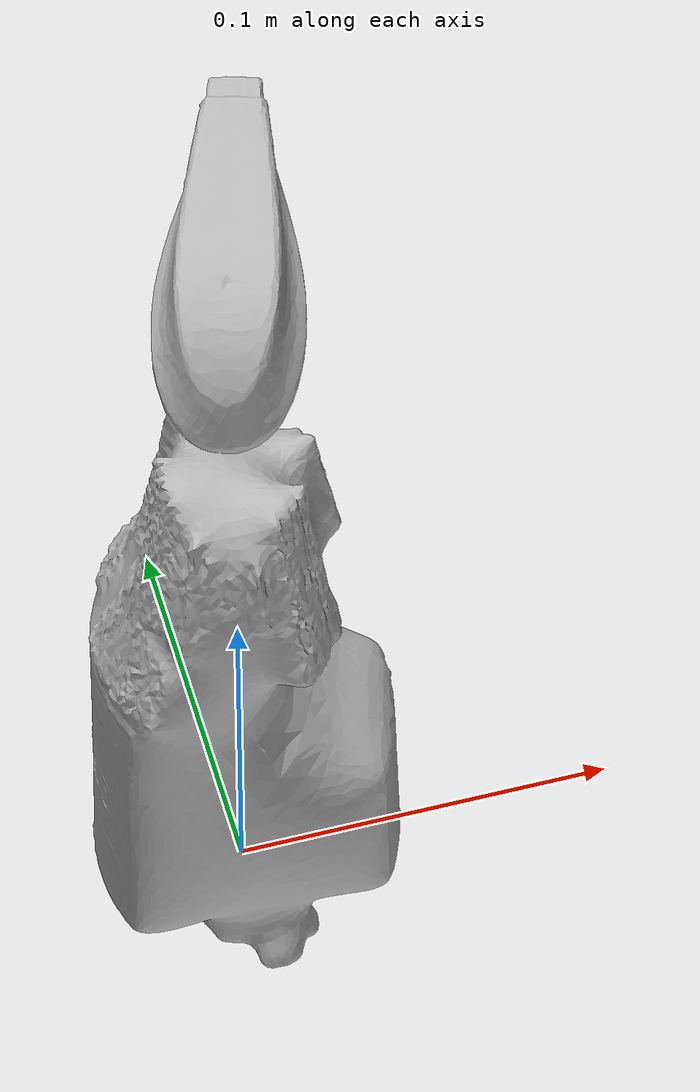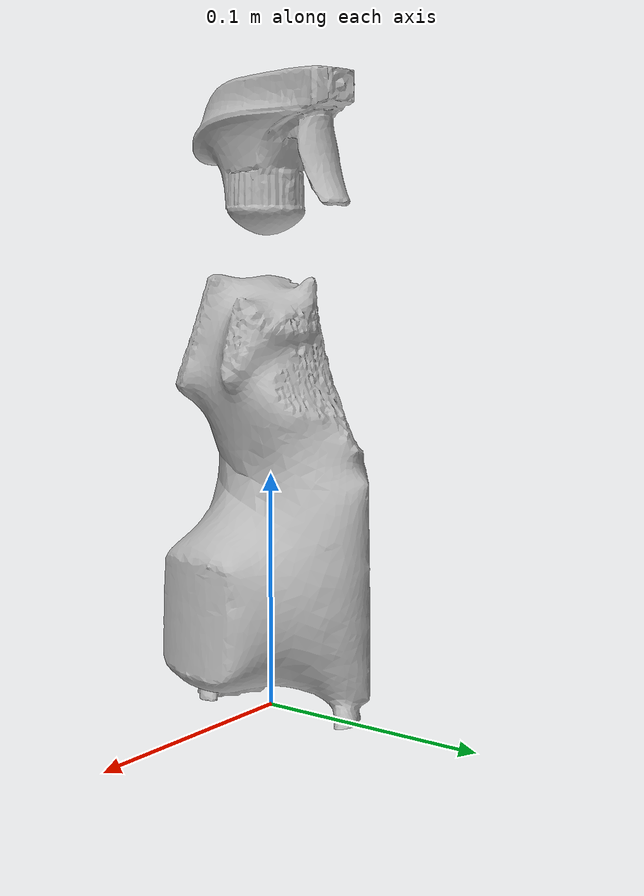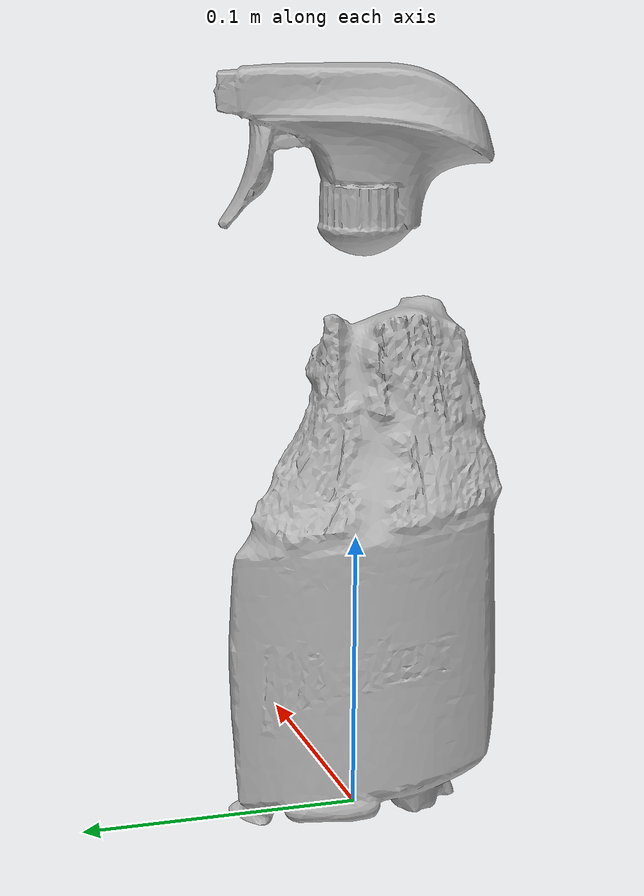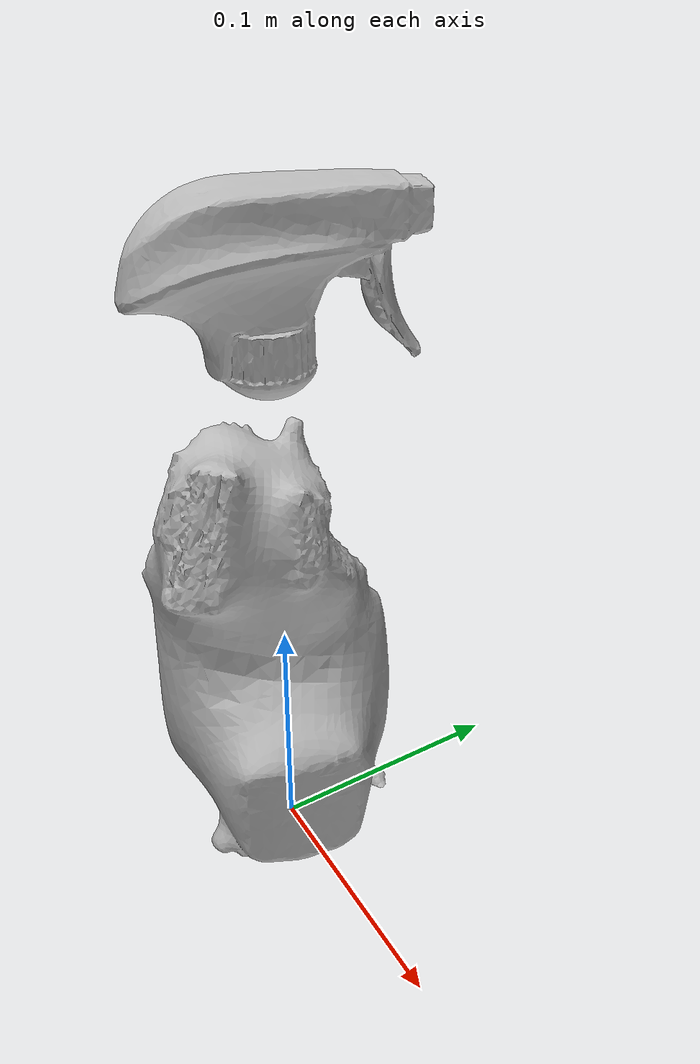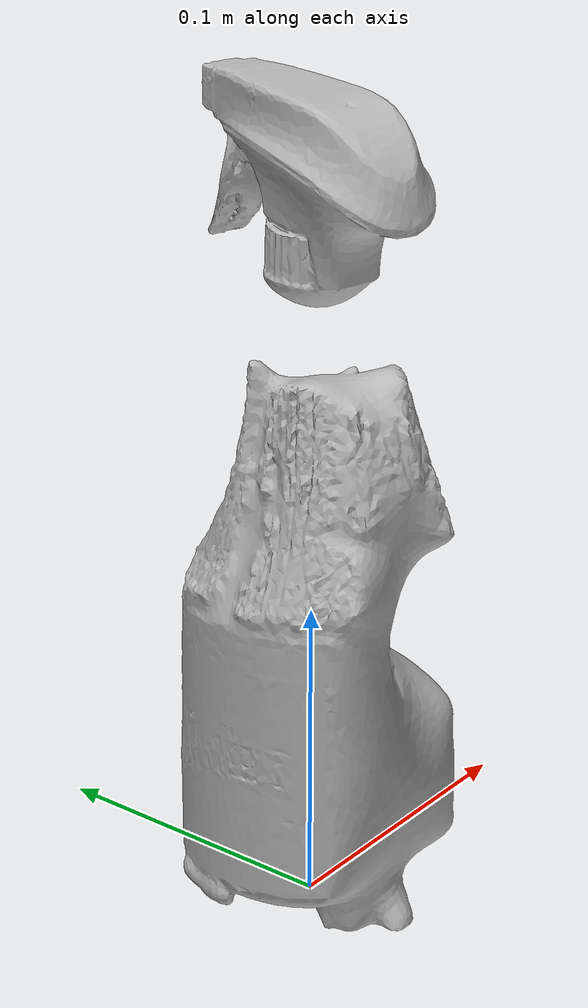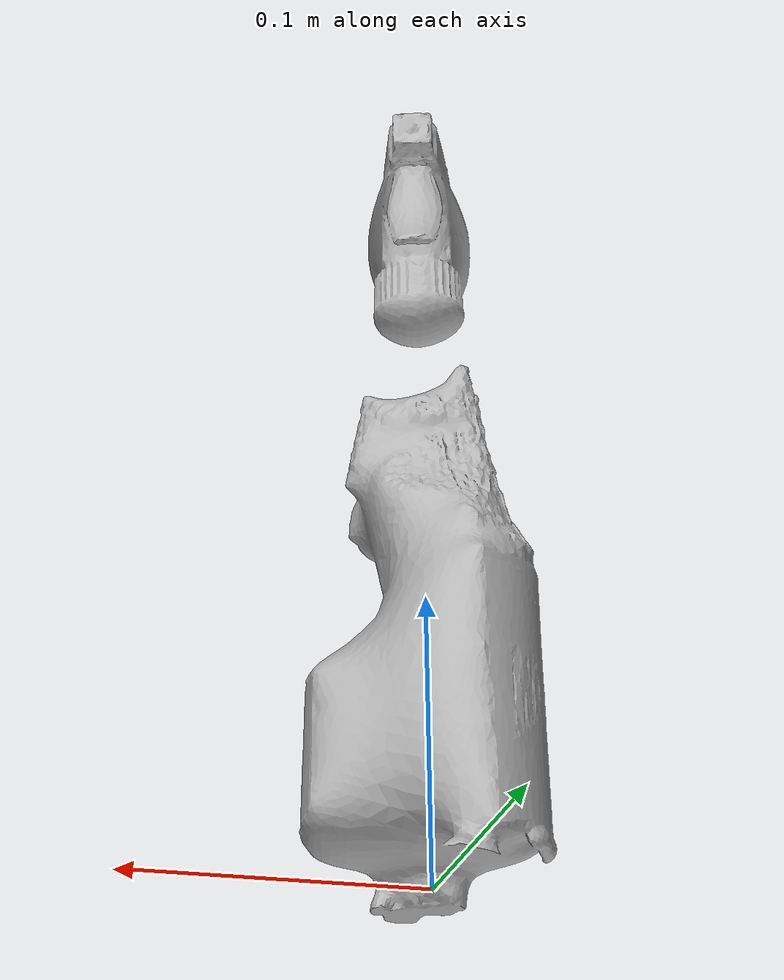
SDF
<?xml version="1.0" ?>
<sdf version='1.8'>
  <model name='ycb_022_windex_bottle'>
    <link name='body'>
      <inertial>
        <mass>1.022</mass>
        <pose>-0.0042410126 -0.0032281943 0.0980435470 0 0 0</pose>
        <inertia>
          <ixx>0.00498803796691</ixx>
          <ixy>-4.43347650441e-05</ixy>
          <ixz>1.07219881226e-05</ixz>
          <iyy>0.00485964808771</iyy>
          <iyz>0.000102701885388</iyz>
          <izz>0.000731589299807</izz>
        </inertia>
      </inertial>
      <visual name='ycb_022_windex_bottle_visual'>
        <pose>-0.018184 -0.011658 -0.004325 0 0 0</pose>
        <geometry>
          <mesh>
            <uri>model://ycb_022_windex_bottle/meshes/textured.dae</uri>
          </mesh>
        </geometry>
      </visual>
      <collision name='ycb_022_windex_bottle_collision'>
        <pose>-0.018184 -0.011658 -0.004325 0 0 0</pose>
        <geometry>
          <mesh>
            <uri>model://ycb_022_windex_bottle/meshes/nontextured.stl</uri>
          </mesh>
        </geometry>
        <max_contacts>10</max_contacts>
        <surface>
          <contact>
            <ode>
              <kp>1e15</kp>
              <kd>1e13</kd>
            </ode>
          </contact>
        </surface>
      </collision>
    </link>
  </model>
</sdf>
